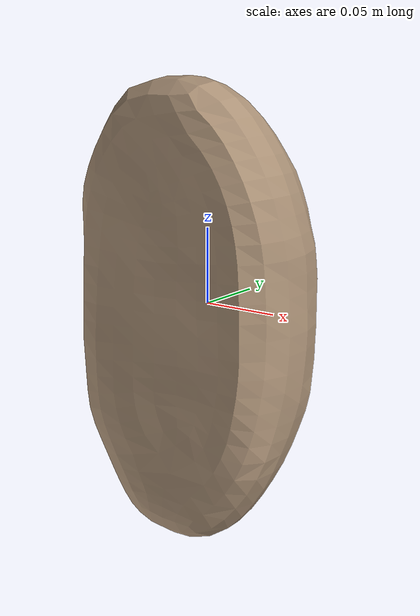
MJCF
<mujoco model="Bread_21">
  <compiler autolimits="true" boundmass="0.01" angle="radian"/>
  <default>
    <default class="/">
      <default class="__VISUAL_MJT__">
        <geom contype="0" conaffinity="0" group="0"/>
      </default>
      <default class="__STRUCTURAL_MJT__">
        <geom contype="8" conaffinity="15" group="4" friction="0.90000000000000002 0.90000000000000002 0.001" solref="0.025000000000000001 1" solimp="0.998 0.998 0.001"/>
      </default>
      <default class="__DYNAMIC_MJT__">
        <geom contype="1" conaffinity="15" group="4" friction="0.90000000000000002 0.90000000000000002 0.001" solref="0.025000000000000001 1" solimp="0.998 0.998 0.001"/>
      </default>
    </default>
  </default>
  <asset>
    <texture name="GrainBread_Mat3" type="2d" file="GrainBread_AlbedoTransparency.png"/>
    <material name="material_GrainBread_Mat3" class="/" texture="GrainBread_Mat3" specular="0.5" shininess="0.5" rgba="0.90441179999999999 0.80106849999999996 0.69160900000000003 1"/>
    <mesh name="Bread_21_grainbread_c_mesh" class="/" file="Bread_21_grainbread_c_mesh/Bread_21_grainbread_c_mesh.obj" scale="1 1 1"/>
  </asset>
  <worldbody>
    <body name="Bread_21">
      <joint name="Bread_21_free" class="/" type="free" pos="0 0 0" axis="0 0 1" stiffness="0" range="0 0" armature="0" damping="0.10000000000000001" frictionloss="0"/>
      <body name="Bread_21_grainbread_c_mesh" pos="-0.00029999999999999997 -0.013220000000000001 -0.0028" quat="1 0 0 0">
        <geom name="Bread_21_grainbread_c_mesh" class="__VISUAL_MJT__" type="mesh" material="material_GrainBread_Mat3" shellinertia="false" mesh="Bread_21_grainbread_c_mesh"/>
        <geom name="Bread_21_PrimitiveCollider_0" class="__DYNAMIC_MJT__" type="capsule" size="0.042280655354261398 0.10580040886998177" rgba="0 1 0 1" pos="-0.0016002655029296875 0.0013138949871063232 0.0027999803423881531" quat="0.99999999999891198 1.4751396607739272e-06 0 0"/>
        <geom name="Bread_21_PrimitiveCollider_1" class="__DYNAMIC_MJT__" type="box" size="0.078916102647781372 0.054592065513134003 0.08773302286863327" rgba="0 1 0 1" pos="-0.00030000001424923539 0.013215400278568268 0.00279999990016222" quat="1 0 0 0"/>
        <geom name="Bread_21_PrimitiveCollider_2" class="__DYNAMIC_MJT__" type="box" size="0.065900653600692749 0.045374829322099686 0.11629212647676468" rgba="0 1 0 1" pos="-0.0016002655029296875 0.0049524735659360886 0.00279998779296875" quat="1 0 0 0"/>
        <geom name="Bread_21_PrimitiveCollider_3" class="__DYNAMIC_MJT__" type="capsule" size="0.042280655354261398 0.10580040886998177" rgba="0 1 0 1" pos="-0.0016002655029296875 0.0013138949871063232 0.0027999803423881531" quat="0.99999999999891198 1.4751396607739272e-06 0 0"/>
      </body>
    </body>
  </worldbody>
</mujoco>
